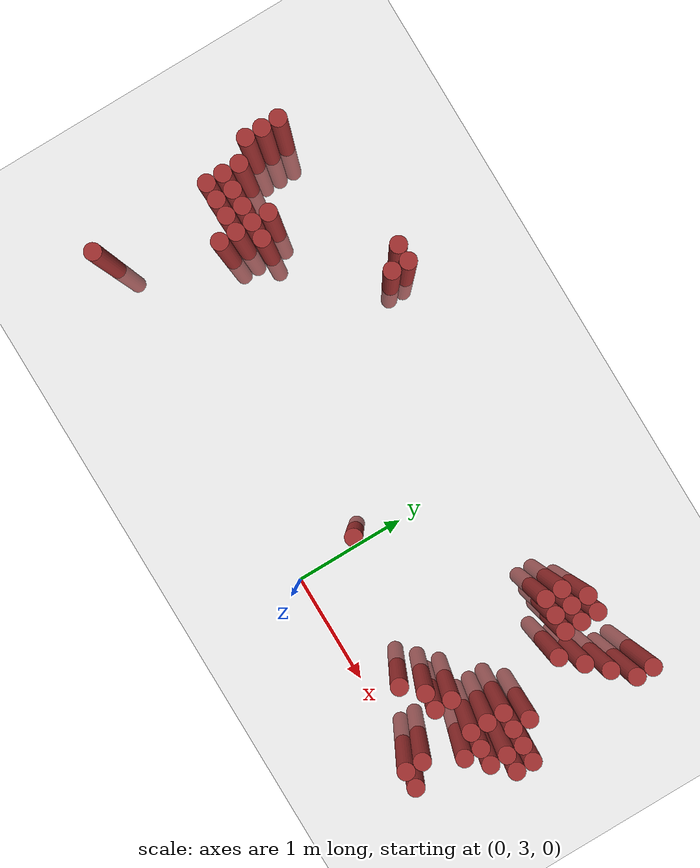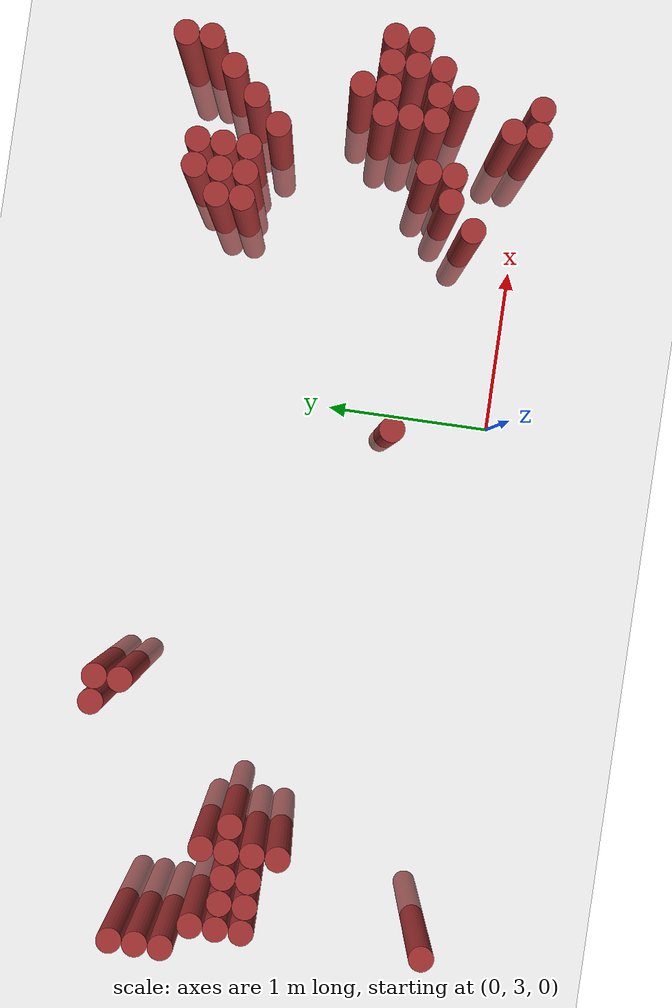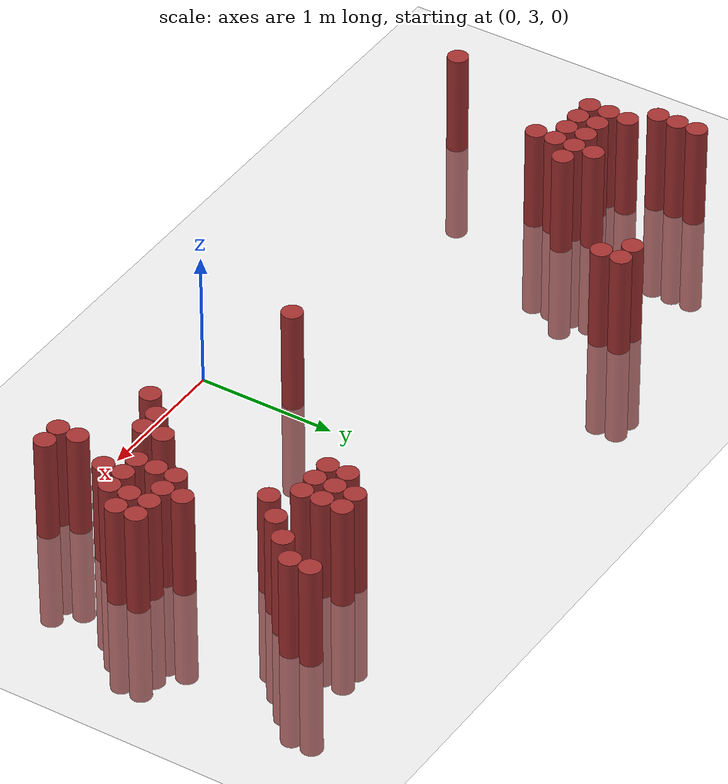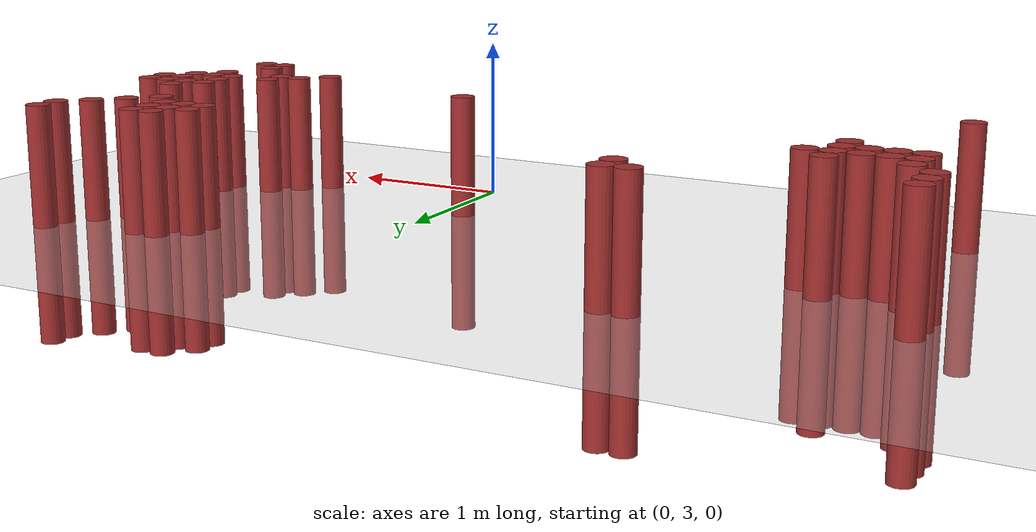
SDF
<sdf version="1.6">
 <world name="default">
  <model name="ground_plane">
   <static>1</static>
   <link name="link">
    <collision name="collision">
     <geometry><plane><normal>0 0 1</normal><size>100 100</size></plane></geometry>
     <surface><friction><ode><mu>100</mu><mu2>50</mu2></ode></friction></surface>
    </collision>
    <visual name="visual">
     <cast_shadows>0</cast_shadows>
     <geometry><plane><normal>0 0 1</normal><size>100 100</size></plane></geometry>
     <material>
      <script><uri>file://media/materials/scripts/gazebo.material</uri><name>Gazebo/Grey</name></script>
     </material>
    </visual>
   </link>
  </model>
  <model name="unit_cylinder_280">
   <static>1</static>
   <pose>-3.275000 4.525000 0.000000 0.000000 0.000000 0.000000</pose>
   <link name="link">
    <inertial>
     <mass>1</mass>
     <inertia><ixx>0.145833</ixx><ixy>0</ixy><ixz>0</ixz><iyy>0.145833</iyy><iyz>0</iyz><izz>0.125</izz></inertia>
    </inertial>
    <collision name="collision">
     <geometry><cylinder><radius>0.075000</radius><length>1.5</length></cylinder></geometry>
    </collision>
    <visual name="visual">
     <geometry><cylinder><radius>0.075000</radius><length>1.5</length></cylinder></geometry>
     <material>
      <ambient>0.648000 0.192000 0.192000 1</ambient>
      <diffuse>0.648000 0.192000 0.192000 1</diffuse>
     </material>
     <material>
      <script><name>Gazebo/Grey</name><uri>file://media/materials/scripts/gazebo.material</uri></script>
     </material>
    </visual>
   </link>
  </model>
  <model name="unit_cylinder_281">
   <static>1</static>
   <pose>-3.275000 4.675000 0.000000 0.000000 0.000000 0.000000</pose>
   <link name="link">
    <inertial>
     <mass>1</mass>
     <inertia><ixx>0.145833</ixx><ixy>0</ixy><ixz>0</ixz><iyy>0.145833</iyy><iyz>0</iyz><izz>0.125</izz></inertia>
    </inertial>
    <collision name="collision">
     <geometry><cylinder><radius>0.075000</radius><length>1.5</length></cylinder></geometry>
    </collision>
    <visual name="visual">
     <geometry><cylinder><radius>0.075000</radius><length>1.5</length></cylinder></geometry>
     <material>
      <ambient>0.648000 0.192000 0.192000 1</ambient>
      <diffuse>0.648000 0.192000 0.192000 1</diffuse>
     </material>
     <material>
      <script><name>Gazebo/Grey</name><uri>file://media/materials/scripts/gazebo.material</uri></script>
     </material>
    </visual>
   </link>
  </model>
  <model name="unit_cylinder_282">
   <static>1</static>
   <pose>-3.275000 4.825000 0.000000 0.000000 0.000000 0.000000</pose>
   <link name="link">
    <inertial>
     <mass>1</mass>
     <inertia><ixx>0.145833</ixx><ixy>0</ixy><ixz>0</ixz><iyy>0.145833</iyy><iyz>0</iyz><izz>0.125</izz></inertia>
    </inertial>
    <collision name="collision">
     <geometry><cylinder><radius>0.075000</radius><length>1.5</length></cylinder></geometry>
    </collision>
    <visual name="visual">
     <geometry><cylinder><radius>0.075000</radius><length>1.5</length></cylinder></geometry>
     <material>
      <ambient>0.648000 0.192000 0.192000 1</ambient>
      <diffuse>0.648000 0.192000 0.192000 1</diffuse>
     </material>
     <material>
      <script><name>Gazebo/Grey</name><uri>file://media/materials/scripts/gazebo.material</uri></script>
     </material>
    </visual>
   </link>
  </model>
  <model name="unit_cylinder_286">
   <static>1</static>
   <pose>-3.125000 3.025000 0.000000 0.000000 0.000000 0.000000</pose>
   <link name="link">
    <inertial>
     <mass>1</mass>
     <inertia><ixx>0.145833</ixx><ixy>0</ixy><ixz>0</ixz><iyy>0.145833</iyy><iyz>0</iyz><izz>0.125</izz></inertia>
    </inertial>
    <collision name="collision">
     <geometry><cylinder><radius>0.075000</radius><length>1.5</length></cylinder></geometry>
    </collision>
    <visual name="visual">
     <geometry><cylinder><radius>0.075000</radius><length>1.5</length></cylinder></geometry>
     <material>
      <ambient>0.648000 0.192000 0.192000 1</ambient>
      <diffuse>0.648000 0.192000 0.192000 1</diffuse>
     </material>
     <material>
      <script><name>Gazebo/Grey</name><uri>file://media/materials/scripts/gazebo.material</uri></script>
     </material>
    </visual>
   </link>
  </model>
  <model name="unit_cylinder_287">
   <static>1</static>
   <pose>-3.125000 4.075000 0.000000 0.000000 0.000000 0.000000</pose>
   <link name="link">
    <inertial>
     <mass>1</mass>
     <inertia><ixx>0.145833</ixx><ixy>0</ixy><ixz>0</ixz><iyy>0.145833</iyy><iyz>0</iyz><izz>0.125</izz></inertia>
    </inertial>
    <collision name="collision">
     <geometry><cylinder><radius>0.075000</radius><length>1.5</length></cylinder></geometry>
    </collision>
    <visual name="visual">
     <geometry><cylinder><radius>0.075000</radius><length>1.5</length></cylinder></geometry>
     <material>
      <ambient>0.648000 0.192000 0.192000 1</ambient>
      <diffuse>0.648000 0.192000 0.192000 1</diffuse>
     </material>
     <material>
      <script><name>Gazebo/Grey</name><uri>file://media/materials/scripts/gazebo.material</uri></script>
     </material>
    </visual>
   </link>
  </model>
  <model name="unit_cylinder_288">
   <static>1</static>
   <pose>-3.125000 4.225000 0.000000 0.000000 0.000000 0.000000</pose>
   <link name="link">
    <inertial>
     <mass>1</mass>
     <inertia><ixx>0.145833</ixx><ixy>0</ixy><ixz>0</ixz><iyy>0.145833</iyy><iyz>0</iyz><izz>0.125</izz></inertia>
    </inertial>
    <collision name="collision">
     <geometry><cylinder><radius>0.075000</radius><length>1.5</length></cylinder></geometry>
    </collision>
    <visual name="visual">
     <geometry><cylinder><radius>0.075000</radius><length>1.5</length></cylinder></geometry>
     <material>
      <ambient>0.648000 0.192000 0.192000 1</ambient>
      <diffuse>0.648000 0.192000 0.192000 1</diffuse>
     </material>
     <material>
      <script><name>Gazebo/Grey</name><uri>file://media/materials/scripts/gazebo.material</uri></script>
     </material>
    </visual>
   </link>
  </model>
  <model name="unit_cylinder_289">
   <static>1</static>
   <pose>-3.125000 4.375000 0.000000 0.000000 0.000000 0.000000</pose>
   <link name="link">
    <inertial>
     <mass>1</mass>
     <inertia><ixx>0.145833</ixx><ixy>0</ixy><ixz>0</ixz><iyy>0.145833</iyy><iyz>0</iyz><izz>0.125</izz></inertia>
    </inertial>
    <collision name="collision">
     <geometry><cylinder><radius>0.075000</radius><length>1.5</length></cylinder></geometry>
    </collision>
    <visual name="visual">
     <geometry><cylinder><radius>0.075000</radius><length>1.5</length></cylinder></geometry>
     <material>
      <ambient>0.648000 0.192000 0.192000 1</ambient>
      <diffuse>0.648000 0.192000 0.192000 1</diffuse>
     </material>
     <material>
      <script><name>Gazebo/Grey</name><uri>file://media/materials/scripts/gazebo.material</uri></script>
     </material>
    </visual>
   </link>
  </model>
  <model name="unit_cylinder_291">
   <static>1</static>
   <pose>-2.975000 4.075000 0.000000 0.000000 0.000000 0.000000</pose>
   <link name="link">
    <inertial>
     <mass>1</mass>
     <inertia><ixx>0.145833</ixx><ixy>0</ixy><ixz>0</ixz><iyy>0.145833</iyy><iyz>0</iyz><izz>0.125</izz></inertia>
    </inertial>
    <collision name="collision">
     <geometry><cylinder><radius>0.075000</radius><length>1.5</length></cylinder></geometry>
    </collision>
    <visual name="visual">
     <geometry><cylinder><radius>0.075000</radius><length>1.5</length></cylinder></geometry>
     <material>
      <ambient>0.648000 0.192000 0.192000 1</ambient>
      <diffuse>0.648000 0.192000 0.192000 1</diffuse>
     </material>
     <material>
      <script><name>Gazebo/Grey</name><uri>file://media/materials/scripts/gazebo.material</uri></script>
     </material>
    </visual>
   </link>
  </model>
  <model name="unit_cylinder_292">
   <static>1</static>
   <pose>-2.975000 4.225000 0.000000 0.000000 0.000000 0.000000</pose>
   <link name="link">
    <inertial>
     <mass>1</mass>
     <inertia><ixx>0.145833</ixx><ixy>0</ixy><ixz>0</ixz><iyy>0.145833</iyy><iyz>0</iyz><izz>0.125</izz></inertia>
    </inertial>
    <collision name="collision">
     <geometry><cylinder><radius>0.075000</radius><length>1.5</length></cylinder></geometry>
    </collision>
    <visual name="visual">
     <geometry><cylinder><radius>0.075000</radius><length>1.5</length></cylinder></geometry>
     <material>
      <ambient>0.648000 0.192000 0.192000 1</ambient>
      <diffuse>0.648000 0.192000 0.192000 1</diffuse>
     </material>
     <material>
      <script><name>Gazebo/Grey</name><uri>file://media/materials/scripts/gazebo.material</uri></script>
     </material>
    </visual>
   </link>
  </model>
  <model name="unit_cylinder_293">
   <static>1</static>
   <pose>-2.825000 4.075000 0.000000 0.000000 0.000000 0.000000</pose>
   <link name="link">
    <inertial>
     <mass>1</mass>
     <inertia><ixx>0.145833</ixx><ixy>0</ixy><ixz>0</ixz><iyy>0.145833</iyy><iyz>0</iyz><izz>0.125</izz></inertia>
    </inertial>
    <collision name="collision">
     <geometry><cylinder><radius>0.075000</radius><length>1.5</length></cylinder></geometry>
    </collision>
    <visual name="visual">
     <geometry><cylinder><radius>0.075000</radius><length>1.5</length></cylinder></geometry>
     <material>
      <ambient>0.648000 0.192000 0.192000 1</ambient>
      <diffuse>0.648000 0.192000 0.192000 1</diffuse>
     </material>
     <material>
      <script><name>Gazebo/Grey</name><uri>file://media/materials/scripts/gazebo.material</uri></script>
     </material>
    </visual>
   </link>
  </model>
  <model name="unit_cylinder_294">
   <static>1</static>
   <pose>-2.825000 4.225000 0.000000 0.000000 0.000000 0.000000</pose>
   <link name="link">
    <inertial>
     <mass>1</mass>
     <inertia><ixx>0.145833</ixx><ixy>0</ixy><ixz>0</ixz><iyy>0.145833</iyy><iyz>0</iyz><izz>0.125</izz></inertia>
    </inertial>
    <collision name="collision">
     <geometry><cylinder><radius>0.075000</radius><length>1.5</length></cylinder></geometry>
    </collision>
    <visual name="visual">
     <geometry><cylinder><radius>0.075000</radius><length>1.5</length></cylinder></geometry>
     <material>
      <ambient>0.648000 0.192000 0.192000 1</ambient>
      <diffuse>0.648000 0.192000 0.192000 1</diffuse>
     </material>
     <material>
      <script><name>Gazebo/Grey</name><uri>file://media/materials/scripts/gazebo.material</uri></script>
     </material>
    </visual>
   </link>
  </model>
  <model name="unit_cylinder_295">
   <static>1</static>
   <pose>-2.675000 3.925000 0.000000 0.000000 0.000000 0.000000</pose>
   <link name="link">
    <inertial>
     <mass>1</mass>
     <inertia><ixx>0.145833</ixx><ixy>0</ixy><ixz>0</ixz><iyy>0.145833</iyy><iyz>0</iyz><izz>0.125</izz></inertia>
    </inertial>
    <collision name="collision">
     <geometry><cylinder><radius>0.075000</radius><length>1.5</length></cylinder></geometry>
    </collision>
    <visual name="visual">
     <geometry><cylinder><radius>0.075000</radius><length>1.5</length></cylinder></geometry>
     <material>
      <ambient>0.648000 0.192000 0.192000 1</ambient>
      <diffuse>0.648000 0.192000 0.192000 1</diffuse>
     </material>
     <material>
      <script><name>Gazebo/Grey</name><uri>file://media/materials/scripts/gazebo.material</uri></script>
     </material>
    </visual>
   </link>
  </model>
  <model name="unit_cylinder_296">
   <static>1</static>
   <pose>-2.675000 4.075000 0.000000 0.000000 0.000000 0.000000</pose>
   <link name="link">
    <inertial>
     <mass>1</mass>
     <inertia><ixx>0.145833</ixx><ixy>0</ixy><ixz>0</ixz><iyy>0.145833</iyy><iyz>0</iyz><izz>0.125</izz></inertia>
    </inertial>
    <collision name="collision">
     <geometry><cylinder><radius>0.075000</radius><length>1.5</length></cylinder></geometry>
    </collision>
    <visual name="visual">
     <geometry><cylinder><radius>0.075000</radius><length>1.5</length></cylinder></geometry>
     <material>
      <ambient>0.648000 0.192000 0.192000 1</ambient>
      <diffuse>0.648000 0.192000 0.192000 1</diffuse>
     </material>
     <material>
      <script><name>Gazebo/Grey</name><uri>file://media/materials/scripts/gazebo.material</uri></script>
     </material>
    </visual>
   </link>
  </model>
  <model name="unit_cylinder_297">
   <static>1</static>
   <pose>-2.675000 4.225000 0.000000 0.000000 0.000000 0.000000</pose>
   <link name="link">
    <inertial>
     <mass>1</mass>
     <inertia><ixx>0.145833</ixx><ixy>0</ixy><ixz>0</ixz><iyy>0.145833</iyy><iyz>0</iyz><izz>0.125</izz></inertia>
    </inertial>
    <collision name="collision">
     <geometry><cylinder><radius>0.075000</radius><length>1.5</length></cylinder></geometry>
    </collision>
    <visual name="visual">
     <geometry><cylinder><radius>0.075000</radius><length>1.5</length></cylinder></geometry>
     <material>
      <ambient>0.648000 0.192000 0.192000 1</ambient>
      <diffuse>0.648000 0.192000 0.192000 1</diffuse>
     </material>
     <material>
      <script><name>Gazebo/Grey</name><uri>file://media/materials/scripts/gazebo.material</uri></script>
     </material>
    </visual>
   </link>
  </model>
  <model name="unit_cylinder_298">
   <static>1</static>
   <pose>-2.675000 4.375000 0.000000 0.000000 0.000000 0.000000</pose>
   <link name="link">
    <inertial>
     <mass>1</mass>
     <inertia><ixx>0.145833</ixx><ixy>0</ixy><ixz>0</ixz><iyy>0.145833</iyy><iyz>0</iyz><izz>0.125</izz></inertia>
    </inertial>
    <collision name="collision">
     <geometry><cylinder><radius>0.075000</radius><length>1.5</length></cylinder></geometry>
    </collision>
    <visual name="visual">
     <geometry><cylinder><radius>0.075000</radius><length>1.5</length></cylinder></geometry>
     <material>
      <ambient>0.648000 0.192000 0.192000 1</ambient>
      <diffuse>0.648000 0.192000 0.192000 1</diffuse>
     </material>
     <material>
      <script><name>Gazebo/Grey</name><uri>file://media/materials/scripts/gazebo.material</uri></script>
     </material>
    </visual>
   </link>
  </model>
  <model name="unit_cylinder_299">
   <static>1</static>
   <pose>-2.525000 4.225000 0.000000 0.000000 0.000000 0.000000</pose>
   <link name="link">
    <inertial>
     <mass>1</mass>
     <inertia><ixx>0.145833</ixx><ixy>0</ixy><ixz>0</ixz><iyy>0.145833</iyy><iyz>0</iyz><izz>0.125</izz></inertia>
    </inertial>
    <collision name="collision">
     <geometry><cylinder><radius>0.075000</radius><length>1.5</length></cylinder></geometry>
    </collision>
    <visual name="visual">
     <geometry><cylinder><radius>0.075000</radius><length>1.5</length></cylinder></geometry>
     <material>
      <ambient>0.648000 0.192000 0.192000 1</ambient>
      <diffuse>0.648000 0.192000 0.192000 1</diffuse>
     </material>
     <material>
      <script><name>Gazebo/Grey</name><uri>file://media/materials/scripts/gazebo.material</uri></script>
     </material>
    </visual>
   </link>
  </model>
  <model name="unit_cylinder_319">
   <static>1</static>
   <pose>-1.925000 5.125000 0.000000 0.000000 0.000000 0.000000</pose>
   <link name="link">
    <inertial>
     <mass>1</mass>
     <inertia><ixx>0.145833</ixx><ixy>0</ixy><ixz>0</ixz><iyy>0.145833</iyy><iyz>0</iyz><izz>0.125</izz></inertia>
    </inertial>
    <collision name="collision">
     <geometry><cylinder><radius>0.075000</radius><length>1.5</length></cylinder></geometry>
    </collision>
    <visual name="visual">
     <geometry><cylinder><radius>0.075000</radius><length>1.5</length></cylinder></geometry>
     <material>
      <ambient>0.648000 0.192000 0.192000 1</ambient>
      <diffuse>0.648000 0.192000 0.192000 1</diffuse>
     </material>
     <material>
      <script><name>Gazebo/Grey</name><uri>file://media/materials/scripts/gazebo.material</uri></script>
     </material>
    </visual>
   </link>
  </model>
  <model name="unit_cylinder_325">
   <static>1</static>
   <pose>-1.775000 4.975000 0.000000 0.000000 0.000000 0.000000</pose>
   <link name="link">
    <inertial>
     <mass>1</mass>
     <inertia><ixx>0.145833</ixx><ixy>0</ixy><ixz>0</ixz><iyy>0.145833</iyy><iyz>0</iyz><izz>0.125</izz></inertia>
    </inertial>
    <collision name="collision">
     <geometry><cylinder><radius>0.075000</radius><length>1.5</length></cylinder></geometry>
    </collision>
    <visual name="visual">
     <geometry><cylinder><radius>0.075000</radius><length>1.5</length></cylinder></geometry>
     <material>
      <ambient>0.648000 0.192000 0.192000 1</ambient>
      <diffuse>0.648000 0.192000 0.192000 1</diffuse>
     </material>
     <material>
      <script><name>Gazebo/Grey</name><uri>file://media/materials/scripts/gazebo.material</uri></script>
     </material>
    </visual>
   </link>
  </model>
  <model name="unit_cylinder_326">
   <static>1</static>
   <pose>-1.775000 5.125000 0.000000 0.000000 0.000000 0.000000</pose>
   <link name="link">
    <inertial>
     <mass>1</mass>
     <inertia><ixx>0.145833</ixx><ixy>0</ixy><ixz>0</ixz><iyy>0.145833</iyy><iyz>0</iyz><izz>0.125</izz></inertia>
    </inertial>
    <collision name="collision">
     <geometry><cylinder><radius>0.075000</radius><length>1.5</length></cylinder></geometry>
    </collision>
    <visual name="visual">
     <geometry><cylinder><radius>0.075000</radius><length>1.5</length></cylinder></geometry>
     <material>
      <ambient>0.648000 0.192000 0.192000 1</ambient>
      <diffuse>0.648000 0.192000 0.192000 1</diffuse>
     </material>
     <material>
      <script><name>Gazebo/Grey</name><uri>file://media/materials/scripts/gazebo.material</uri></script>
     </material>
    </visual>
   </link>
  </model>
  <model name="unit_cylinder_354">
   <static>1</static>
   <pose>-0.125000 3.625000 0.000000 0.000000 0.000000 0.000000</pose>
   <link name="link">
    <inertial>
     <mass>1</mass>
     <inertia><ixx>0.145833</ixx><ixy>0</ixy><ixz>0</ixz><iyy>0.145833</iyy><iyz>0</iyz><izz>0.125</izz></inertia>
    </inertial>
    <collision name="collision">
     <geometry><cylinder><radius>0.075000</radius><length>1.5</length></cylinder></geometry>
    </collision>
    <visual name="visual">
     <geometry><cylinder><radius>0.075000</radius><length>1.5</length></cylinder></geometry>
     <material>
      <ambient>0.648000 0.192000 0.192000 1</ambient>
      <diffuse>0.648000 0.192000 0.192000 1</diffuse>
     </material>
     <material>
      <script><name>Gazebo/Grey</name><uri>file://media/materials/scripts/gazebo.material</uri></script>
     </material>
    </visual>
   </link>
  </model>
  <model name="unit_cylinder_366">
   <static>1</static>
   <pose>1.075000 3.325000 0.000000 0.000000 0.000000 0.000000</pose>
   <link name="link">
    <inertial>
     <mass>1</mass>
     <inertia><ixx>0.145833</ixx><ixy>0</ixy><ixz>0</ixz><iyy>0.145833</iyy><iyz>0</iyz><izz>0.125</izz></inertia>
    </inertial>
    <collision name="collision">
     <geometry><cylinder><radius>0.075000</radius><length>1.5</length></cylinder></geometry>
    </collision>
    <visual name="visual">
     <geometry><cylinder><radius>0.075000</radius><length>1.5</length></cylinder></geometry>
     <material>
      <ambient>0.648000 0.192000 0.192000 1</ambient>
      <diffuse>0.648000 0.192000 0.192000 1</diffuse>
     </material>
     <material>
      <script><name>Gazebo/Grey</name><uri>file://media/materials/scripts/gazebo.material</uri></script>
     </material>
    </visual>
   </link>
  </model>
  <model name="unit_cylinder_367">
   <static>1</static>
   <pose>1.075000 4.675000 0.000000 0.000000 0.000000 0.000000</pose>
   <link name="link">
    <inertial>
     <mass>1</mass>
     <inertia><ixx>0.145833</ixx><ixy>0</ixy><ixz>0</ixz><iyy>0.145833</iyy><iyz>0</iyz><izz>0.125</izz></inertia>
    </inertial>
    <collision name="collision">
     <geometry><cylinder><radius>0.075000</radius><length>1.5</length></cylinder></geometry>
    </collision>
    <visual name="visual">
     <geometry><cylinder><radius>0.075000</radius><length>1.5</length></cylinder></geometry>
     <material>
      <ambient>0.648000 0.192000 0.192000 1</ambient>
      <diffuse>0.648000 0.192000 0.192000 1</diffuse>
     </material>
     <material>
      <script><name>Gazebo/Grey</name><uri>file://media/materials/scripts/gazebo.material</uri></script>
     </material>
    </visual>
   </link>
  </model>
  <model name="unit_cylinder_368">
   <static>1</static>
   <pose>1.075000 4.825000 0.000000 0.000000 0.000000 0.000000</pose>
   <link name="link">
    <inertial>
     <mass>1</mass>
     <inertia><ixx>0.145833</ixx><ixy>0</ixy><ixz>0</ixz><iyy>0.145833</iyy><iyz>0</iyz><izz>0.125</izz></inertia>
    </inertial>
    <collision name="collision">
     <geometry><cylinder><radius>0.075000</radius><length>1.5</length></cylinder></geometry>
    </collision>
    <visual name="visual">
     <geometry><cylinder><radius>0.075000</radius><length>1.5</length></cylinder></geometry>
     <material>
      <ambient>0.648000 0.192000 0.192000 1</ambient>
      <diffuse>0.648000 0.192000 0.192000 1</diffuse>
     </material>
     <material>
      <script><name>Gazebo/Grey</name><uri>file://media/materials/scripts/gazebo.material</uri></script>
     </material>
    </visual>
   </link>
  </model>
  <model name="unit_cylinder_375">
   <static>1</static>
   <pose>1.225000 3.475000 0.000000 0.000000 0.000000 0.000000</pose>
   <link name="link">
    <inertial>
     <mass>1</mass>
     <inertia><ixx>0.145833</ixx><ixy>0</ixy><ixz>0</ixz><iyy>0.145833</iyy><iyz>0</iyz><izz>0.125</izz></inertia>
    </inertial>
    <collision name="collision">
     <geometry><cylinder><radius>0.075000</radius><length>1.5</length></cylinder></geometry>
    </collision>
    <visual name="visual">
     <geometry><cylinder><radius>0.075000</radius><length>1.5</length></cylinder></geometry>
     <material>
      <ambient>0.648000 0.192000 0.192000 1</ambient>
      <diffuse>0.648000 0.192000 0.192000 1</diffuse>
     </material>
     <material>
      <script><name>Gazebo/Grey</name><uri>file://media/materials/scripts/gazebo.material</uri></script>
     </material>
    </visual>
   </link>
  </model>
  <model name="unit_cylinder_376">
   <static>1</static>
   <pose>1.225000 4.675000 0.000000 0.000000 0.000000 0.000000</pose>
   <link name="link">
    <inertial>
     <mass>1</mass>
     <inertia><ixx>0.145833</ixx><ixy>0</ixy><ixz>0</ixz><iyy>0.145833</iyy><iyz>0</iyz><izz>0.125</izz></inertia>
    </inertial>
    <collision name="collision">
     <geometry><cylinder><radius>0.075000</radius><length>1.5</length></cylinder></geometry>
    </collision>
    <visual name="visual">
     <geometry><cylinder><radius>0.075000</radius><length>1.5</length></cylinder></geometry>
     <material>
      <ambient>0.648000 0.192000 0.192000 1</ambient>
      <diffuse>0.648000 0.192000 0.192000 1</diffuse>
     </material>
     <material>
      <script><name>Gazebo/Grey</name><uri>file://media/materials/scripts/gazebo.material</uri></script>
     </material>
    </visual>
   </link>
  </model>
  <model name="unit_cylinder_377">
   <static>1</static>
   <pose>1.225000 4.825000 0.000000 0.000000 0.000000 0.000000</pose>
   <link name="link">
    <inertial>
     <mass>1</mass>
     <inertia><ixx>0.145833</ixx><ixy>0</ixy><ixz>0</ixz><iyy>0.145833</iyy><iyz>0</iyz><izz>0.125</izz></inertia>
    </inertial>
    <collision name="collision">
     <geometry><cylinder><radius>0.075000</radius><length>1.5</length></cylinder></geometry>
    </collision>
    <visual name="visual">
     <geometry><cylinder><radius>0.075000</radius><length>1.5</length></cylinder></geometry>
     <material>
      <ambient>0.648000 0.192000 0.192000 1</ambient>
      <diffuse>0.648000 0.192000 0.192000 1</diffuse>
     </material>
     <material>
      <script><name>Gazebo/Grey</name><uri>file://media/materials/scripts/gazebo.material</uri></script>
     </material>
    </visual>
   </link>
  </model>
  <model name="unit_cylinder_378">
   <static>1</static>
   <pose>1.225000 4.975000 0.000000 0.000000 0.000000 0.000000</pose>
   <link name="link">
    <inertial>
     <mass>1</mass>
     <inertia><ixx>0.145833</ixx><ixy>0</ixy><ixz>0</ixz><iyy>0.145833</iyy><iyz>0</iyz><izz>0.125</izz></inertia>
    </inertial>
    <collision name="collision">
     <geometry><cylinder><radius>0.075000</radius><length>1.5</length></cylinder></geometry>
    </collision>
    <visual name="visual">
     <geometry><cylinder><radius>0.075000</radius><length>1.5</length></cylinder></geometry>
     <material>
      <ambient>0.648000 0.192000 0.192000 1</ambient>
      <diffuse>0.648000 0.192000 0.192000 1</diffuse>
     </material>
     <material>
      <script><name>Gazebo/Grey</name><uri>file://media/materials/scripts/gazebo.material</uri></script>
     </material>
    </visual>
   </link>
  </model>
  <model name="unit_cylinder_381">
   <static>1</static>
   <pose>1.375000 3.475000 0.000000 0.000000 0.000000 0.000000</pose>
   <link name="link">
    <inertial>
     <mass>1</mass>
     <inertia><ixx>0.145833</ixx><ixy>0</ixy><ixz>0</ixz><iyy>0.145833</iyy><iyz>0</iyz><izz>0.125</izz></inertia>
    </inertial>
    <collision name="collision">
     <geometry><cylinder><radius>0.075000</radius><length>1.5</length></cylinder></geometry>
    </collision>
    <visual name="visual">
     <geometry><cylinder><radius>0.075000</radius><length>1.5</length></cylinder></geometry>
     <material>
      <ambient>0.648000 0.192000 0.192000 1</ambient>
      <diffuse>0.648000 0.192000 0.192000 1</diffuse>
     </material>
     <material>
      <script><name>Gazebo/Grey</name><uri>file://media/materials/scripts/gazebo.material</uri></script>
     </material>
    </visual>
   </link>
  </model>
  <model name="unit_cylinder_382">
   <static>1</static>
   <pose>1.375000 3.625000 0.000000 0.000000 0.000000 0.000000</pose>
   <link name="link">
    <inertial>
     <mass>1</mass>
     <inertia><ixx>0.145833</ixx><ixy>0</ixy><ixz>0</ixz><iyy>0.145833</iyy><iyz>0</iyz><izz>0.125</izz></inertia>
    </inertial>
    <collision name="collision">
     <geometry><cylinder><radius>0.075000</radius><length>1.5</length></cylinder></geometry>
    </collision>
    <visual name="visual">
     <geometry><cylinder><radius>0.075000</radius><length>1.5</length></cylinder></geometry>
     <material>
      <ambient>0.648000 0.192000 0.192000 1</ambient>
      <diffuse>0.648000 0.192000 0.192000 1</diffuse>
     </material>
     <material>
      <script><name>Gazebo/Grey</name><uri>file://media/materials/scripts/gazebo.material</uri></script>
     </material>
    </visual>
   </link>
  </model>
  <model name="unit_cylinder_383">
   <static>1</static>
   <pose>1.375000 4.675000 0.000000 0.000000 0.000000 0.000000</pose>
   <link name="link">
    <inertial>
     <mass>1</mass>
     <inertia><ixx>0.145833</ixx><ixy>0</ixy><ixz>0</ixz><iyy>0.145833</iyy><iyz>0</iyz><izz>0.125</izz></inertia>
    </inertial>
    <collision name="collision">
     <geometry><cylinder><radius>0.075000</radius><length>1.5</length></cylinder></geometry>
    </collision>
    <visual name="visual">
     <geometry><cylinder><radius>0.075000</radius><length>1.5</length></cylinder></geometry>
     <material>
      <ambient>0.648000 0.192000 0.192000 1</ambient>
      <diffuse>0.648000 0.192000 0.192000 1</diffuse>
     </material>
     <material>
      <script><name>Gazebo/Grey</name><uri>file://media/materials/scripts/gazebo.material</uri></script>
     </material>
    </visual>
   </link>
  </model>
  <model name="unit_cylinder_384">
   <static>1</static>
   <pose>1.375000 4.825000 0.000000 0.000000 0.000000 0.000000</pose>
   <link name="link">
    <inertial>
     <mass>1</mass>
     <inertia><ixx>0.145833</ixx><ixy>0</ixy><ixz>0</ixz><iyy>0.145833</iyy><iyz>0</iyz><izz>0.125</izz></inertia>
    </inertial>
    <collision name="collision">
     <geometry><cylinder><radius>0.075000</radius><length>1.5</length></cylinder></geometry>
    </collision>
    <visual name="visual">
     <geometry><cylinder><radius>0.075000</radius><length>1.5</length></cylinder></geometry>
     <material>
      <ambient>0.648000 0.192000 0.192000 1</ambient>
      <diffuse>0.648000 0.192000 0.192000 1</diffuse>
     </material>
     <material>
      <script><name>Gazebo/Grey</name><uri>file://media/materials/scripts/gazebo.material</uri></script>
     </material>
    </visual>
   </link>
  </model>
  <model name="unit_cylinder_385">
   <static>1</static>
   <pose>1.375000 4.975000 0.000000 0.000000 0.000000 0.000000</pose>
   <link name="link">
    <inertial>
     <mass>1</mass>
     <inertia><ixx>0.145833</ixx><ixy>0</ixy><ixz>0</ixz><iyy>0.145833</iyy><iyz>0</iyz><izz>0.125</izz></inertia>
    </inertial>
    <collision name="collision">
     <geometry><cylinder><radius>0.075000</radius><length>1.5</length></cylinder></geometry>
    </collision>
    <visual name="visual">
     <geometry><cylinder><radius>0.075000</radius><length>1.5</length></cylinder></geometry>
     <material>
      <ambient>0.648000 0.192000 0.192000 1</ambient>
      <diffuse>0.648000 0.192000 0.192000 1</diffuse>
     </material>
     <material>
      <script><name>Gazebo/Grey</name><uri>file://media/materials/scripts/gazebo.material</uri></script>
     </material>
    </visual>
   </link>
  </model>
  <model name="unit_cylinder_386">
   <static>1</static>
   <pose>1.525000 4.525000 0.000000 0.000000 0.000000 0.000000</pose>
   <link name="link">
    <inertial>
     <mass>1</mass>
     <inertia><ixx>0.145833</ixx><ixy>0</ixy><ixz>0</ixz><iyy>0.145833</iyy><iyz>0</iyz><izz>0.125</izz></inertia>
    </inertial>
    <collision name="collision">
     <geometry><cylinder><radius>0.075000</radius><length>1.5</length></cylinder></geometry>
    </collision>
    <visual name="visual">
     <geometry><cylinder><radius>0.075000</radius><length>1.5</length></cylinder></geometry>
     <material>
      <ambient>0.648000 0.192000 0.192000 1</ambient>
      <diffuse>0.648000 0.192000 0.192000 1</diffuse>
     </material>
     <material>
      <script><name>Gazebo/Grey</name><uri>file://media/materials/scripts/gazebo.material</uri></script>
     </material>
    </visual>
   </link>
  </model>
  <model name="unit_cylinder_391">
   <static>1</static>
   <pose>1.675000 3.025000 0.000000 0.000000 0.000000 0.000000</pose>
   <link name="link">
    <inertial>
     <mass>1</mass>
     <inertia><ixx>0.145833</ixx><ixy>0</ixy><ixz>0</ixz><iyy>0.145833</iyy><iyz>0</iyz><izz>0.125</izz></inertia>
    </inertial>
    <collision name="collision">
     <geometry><cylinder><radius>0.075000</radius><length>1.5</length></cylinder></geometry>
    </collision>
    <visual name="visual">
     <geometry><cylinder><radius>0.075000</radius><length>1.5</length></cylinder></geometry>
     <material>
      <ambient>0.648000 0.192000 0.192000 1</ambient>
      <diffuse>0.648000 0.192000 0.192000 1</diffuse>
     </material>
     <material>
      <script><name>Gazebo/Grey</name><uri>file://media/materials/scripts/gazebo.material</uri></script>
     </material>
    </visual>
   </link>
  </model>
  <model name="unit_cylinder_392">
   <static>1</static>
   <pose>1.675000 3.175000 0.000000 0.000000 0.000000 0.000000</pose>
   <link name="link">
    <inertial>
     <mass>1</mass>
     <inertia><ixx>0.145833</ixx><ixy>0</ixy><ixz>0</ixz><iyy>0.145833</iyy><iyz>0</iyz><izz>0.125</izz></inertia>
    </inertial>
    <collision name="collision">
     <geometry><cylinder><radius>0.075000</radius><length>1.5</length></cylinder></geometry>
    </collision>
    <visual name="visual">
     <geometry><cylinder><radius>0.075000</radius><length>1.5</length></cylinder></geometry>
     <material>
      <ambient>0.648000 0.192000 0.192000 1</ambient>
      <diffuse>0.648000 0.192000 0.192000 1</diffuse>
     </material>
     <material>
      <script><name>Gazebo/Grey</name><uri>file://media/materials/scripts/gazebo.material</uri></script>
     </material>
    </visual>
   </link>
  </model>
  <model name="unit_cylinder_393">
   <static>1</static>
   <pose>1.675000 3.625000 0.000000 0.000000 0.000000 0.000000</pose>
   <link name="link">
    <inertial>
     <mass>1</mass>
     <inertia><ixx>0.145833</ixx><ixy>0</ixy><ixz>0</ixz><iyy>0.145833</iyy><iyz>0</iyz><izz>0.125</izz></inertia>
    </inertial>
    <collision name="collision">
     <geometry><cylinder><radius>0.075000</radius><length>1.5</length></cylinder></geometry>
    </collision>
    <visual name="visual">
     <geometry><cylinder><radius>0.075000</radius><length>1.5</length></cylinder></geometry>
     <material>
      <ambient>0.648000 0.192000 0.192000 1</ambient>
      <diffuse>0.648000 0.192000 0.192000 1</diffuse>
     </material>
     <material>
      <script><name>Gazebo/Grey</name><uri>file://media/materials/scripts/gazebo.material</uri></script>
     </material>
    </visual>
   </link>
  </model>
  <model name="unit_cylinder_394">
   <static>1</static>
   <pose>1.675000 3.775000 0.000000 0.000000 0.000000 0.000000</pose>
   <link name="link">
    <inertial>
     <mass>1</mass>
     <inertia><ixx>0.145833</ixx><ixy>0</ixy><ixz>0</ixz><iyy>0.145833</iyy><iyz>0</iyz><izz>0.125</izz></inertia>
    </inertial>
    <collision name="collision">
     <geometry><cylinder><radius>0.075000</radius><length>1.5</length></cylinder></geometry>
    </collision>
    <visual name="visual">
     <geometry><cylinder><radius>0.075000</radius><length>1.5</length></cylinder></geometry>
     <material>
      <ambient>0.648000 0.192000 0.192000 1</ambient>
      <diffuse>0.648000 0.192000 0.192000 1</diffuse>
     </material>
     <material>
      <script><name>Gazebo/Grey</name><uri>file://media/materials/scripts/gazebo.material</uri></script>
     </material>
    </visual>
   </link>
  </model>
  <model name="unit_cylinder_395">
   <static>1</static>
   <pose>1.675000 3.925000 0.000000 0.000000 0.000000 0.000000</pose>
   <link name="link">
    <inertial>
     <mass>1</mass>
     <inertia><ixx>0.145833</ixx><ixy>0</ixy><ixz>0</ixz><iyy>0.145833</iyy><iyz>0</iyz><izz>0.125</izz></inertia>
    </inertial>
    <collision name="collision">
     <geometry><cylinder><radius>0.075000</radius><length>1.5</length></cylinder></geometry>
    </collision>
    <visual name="visual">
     <geometry><cylinder><radius>0.075000</radius><length>1.5</length></cylinder></geometry>
     <material>
      <ambient>0.648000 0.192000 0.192000 1</ambient>
      <diffuse>0.648000 0.192000 0.192000 1</diffuse>
     </material>
     <material>
      <script><name>Gazebo/Grey</name><uri>file://media/materials/scripts/gazebo.material</uri></script>
     </material>
    </visual>
   </link>
  </model>
  <model name="unit_cylinder_396">
   <static>1</static>
   <pose>1.675000 4.675000 0.000000 0.000000 0.000000 0.000000</pose>
   <link name="link">
    <inertial>
     <mass>1</mass>
     <inertia><ixx>0.145833</ixx><ixy>0</ixy><ixz>0</ixz><iyy>0.145833</iyy><iyz>0</iyz><izz>0.125</izz></inertia>
    </inertial>
    <collision name="collision">
     <geometry><cylinder><radius>0.075000</radius><length>1.5</length></cylinder></geometry>
    </collision>
    <visual name="visual">
     <geometry><cylinder><radius>0.075000</radius><length>1.5</length></cylinder></geometry>
     <material>
      <ambient>0.648000 0.192000 0.192000 1</ambient>
      <diffuse>0.648000 0.192000 0.192000 1</diffuse>
     </material>
     <material>
      <script><name>Gazebo/Grey</name><uri>file://media/materials/scripts/gazebo.material</uri></script>
     </material>
    </visual>
   </link>
  </model>
  <model name="unit_cylinder_400">
   <static>1</static>
   <pose>1.825000 3.025000 0.000000 0.000000 0.000000 0.000000</pose>
   <link name="link">
    <inertial>
     <mass>1</mass>
     <inertia><ixx>0.145833</ixx><ixy>0</ixy><ixz>0</ixz><iyy>0.145833</iyy><iyz>0</iyz><izz>0.125</izz></inertia>
    </inertial>
    <collision name="collision">
     <geometry><cylinder><radius>0.075000</radius><length>1.5</length></cylinder></geometry>
    </collision>
    <visual name="visual">
     <geometry><cylinder><radius>0.075000</radius><length>1.5</length></cylinder></geometry>
     <material>
      <ambient>0.648000 0.192000 0.192000 1</ambient>
      <diffuse>0.648000 0.192000 0.192000 1</diffuse>
     </material>
     <material>
      <script><name>Gazebo/Grey</name><uri>file://media/materials/scripts/gazebo.material</uri></script>
     </material>
    </visual>
   </link>
  </model>
  <model name="unit_cylinder_401">
   <static>1</static>
   <pose>1.825000 3.475000 0.000000 0.000000 0.000000 0.000000</pose>
   <link name="link">
    <inertial>
     <mass>1</mass>
     <inertia><ixx>0.145833</ixx><ixy>0</ixy><ixz>0</ixz><iyy>0.145833</iyy><iyz>0</iyz><izz>0.125</izz></inertia>
    </inertial>
    <collision name="collision">
     <geometry><cylinder><radius>0.075000</radius><length>1.5</length></cylinder></geometry>
    </collision>
    <visual name="visual">
     <geometry><cylinder><radius>0.075000</radius><length>1.5</length></cylinder></geometry>
     <material>
      <ambient>0.648000 0.192000 0.192000 1</ambient>
      <diffuse>0.648000 0.192000 0.192000 1</diffuse>
     </material>
     <material>
      <script><name>Gazebo/Grey</name><uri>file://media/materials/scripts/gazebo.material</uri></script>
     </material>
    </visual>
   </link>
  </model>
  <model name="unit_cylinder_402">
   <static>1</static>
   <pose>1.825000 3.625000 0.000000 0.000000 0.000000 0.000000</pose>
   <link name="link">
    <inertial>
     <mass>1</mass>
     <inertia><ixx>0.145833</ixx><ixy>0</ixy><ixz>0</ixz><iyy>0.145833</iyy><iyz>0</iyz><izz>0.125</izz></inertia>
    </inertial>
    <collision name="collision">
     <geometry><cylinder><radius>0.075000</radius><length>1.5</length></cylinder></geometry>
    </collision>
    <visual name="visual">
     <geometry><cylinder><radius>0.075000</radius><length>1.5</length></cylinder></geometry>
     <material>
      <ambient>0.648000 0.192000 0.192000 1</ambient>
      <diffuse>0.648000 0.192000 0.192000 1</diffuse>
     </material>
     <material>
      <script><name>Gazebo/Grey</name><uri>file://media/materials/scripts/gazebo.material</uri></script>
     </material>
    </visual>
   </link>
  </model>
  <model name="unit_cylinder_403">
   <static>1</static>
   <pose>1.825000 3.925000 0.000000 0.000000 0.000000 0.000000</pose>
   <link name="link">
    <inertial>
     <mass>1</mass>
     <inertia><ixx>0.145833</ixx><ixy>0</ixy><ixz>0</ixz><iyy>0.145833</iyy><iyz>0</iyz><izz>0.125</izz></inertia>
    </inertial>
    <collision name="collision">
     <geometry><cylinder><radius>0.075000</radius><length>1.5</length></cylinder></geometry>
    </collision>
    <visual name="visual">
     <geometry><cylinder><radius>0.075000</radius><length>1.5</length></cylinder></geometry>
     <material>
      <ambient>0.648000 0.192000 0.192000 1</ambient>
      <diffuse>0.648000 0.192000 0.192000 1</diffuse>
     </material>
     <material>
      <script><name>Gazebo/Grey</name><uri>file://media/materials/scripts/gazebo.material</uri></script>
     </material>
    </visual>
   </link>
  </model>
  <model name="unit_cylinder_404">
   <static>1</static>
   <pose>1.825000 4.075000 0.000000 0.000000 0.000000 0.000000</pose>
   <link name="link">
    <inertial>
     <mass>1</mass>
     <inertia><ixx>0.145833</ixx><ixy>0</ixy><ixz>0</ixz><iyy>0.145833</iyy><iyz>0</iyz><izz>0.125</izz></inertia>
    </inertial>
    <collision name="collision">
     <geometry><cylinder><radius>0.075000</radius><length>1.5</length></cylinder></geometry>
    </collision>
    <visual name="visual">
     <geometry><cylinder><radius>0.075000</radius><length>1.5</length></cylinder></geometry>
     <material>
      <ambient>0.648000 0.192000 0.192000 1</ambient>
      <diffuse>0.648000 0.192000 0.192000 1</diffuse>
     </material>
     <material>
      <script><name>Gazebo/Grey</name><uri>file://media/materials/scripts/gazebo.material</uri></script>
     </material>
    </visual>
   </link>
  </model>
  <model name="unit_cylinder_405">
   <static>1</static>
   <pose>1.825000 4.825000 0.000000 0.000000 0.000000 0.000000</pose>
   <link name="link">
    <inertial>
     <mass>1</mass>
     <inertia><ixx>0.145833</ixx><ixy>0</ixy><ixz>0</ixz><iyy>0.145833</iyy><iyz>0</iyz><izz>0.125</izz></inertia>
    </inertial>
    <collision name="collision">
     <geometry><cylinder><radius>0.075000</radius><length>1.5</length></cylinder></geometry>
    </collision>
    <visual name="visual">
     <geometry><cylinder><radius>0.075000</radius><length>1.5</length></cylinder></geometry>
     <material>
      <ambient>0.648000 0.192000 0.192000 1</ambient>
      <diffuse>0.648000 0.192000 0.192000 1</diffuse>
     </material>
     <material>
      <script><name>Gazebo/Grey</name><uri>file://media/materials/scripts/gazebo.material</uri></script>
     </material>
    </visual>
   </link>
  </model>
  <model name="unit_cylinder_409">
   <static>1</static>
   <pose>1.975000 3.625000 0.000000 0.000000 0.000000 0.000000</pose>
   <link name="link">
    <inertial>
     <mass>1</mass>
     <inertia><ixx>0.145833</ixx><ixy>0</ixy><ixz>0</ixz><iyy>0.145833</iyy><iyz>0</iyz><izz>0.125</izz></inertia>
    </inertial>
    <collision name="collision">
     <geometry><cylinder><radius>0.075000</radius><length>1.5</length></cylinder></geometry>
    </collision>
    <visual name="visual">
     <geometry><cylinder><radius>0.075000</radius><length>1.5</length></cylinder></geometry>
     <material>
      <ambient>0.648000 0.192000 0.192000 1</ambient>
      <diffuse>0.648000 0.192000 0.192000 1</diffuse>
     </material>
     <material>
      <script><name>Gazebo/Grey</name><uri>file://media/materials/scripts/gazebo.material</uri></script>
     </material>
    </visual>
   </link>
  </model>
  <model name="unit_cylinder_410">
   <static>1</static>
   <pose>1.975000 3.775000 0.000000 0.000000 0.000000 0.000000</pose>
   <link name="link">
    <inertial>
     <mass>1</mass>
     <inertia><ixx>0.145833</ixx><ixy>0</ixy><ixz>0</ixz><iyy>0.145833</iyy><iyz>0</iyz><izz>0.125</izz></inertia>
    </inertial>
    <collision name="collision">
     <geometry><cylinder><radius>0.075000</radius><length>1.5</length></cylinder></geometry>
    </collision>
    <visual name="visual">
     <geometry><cylinder><radius>0.075000</radius><length>1.5</length></cylinder></geometry>
     <material>
      <ambient>0.648000 0.192000 0.192000 1</ambient>
      <diffuse>0.648000 0.192000 0.192000 1</diffuse>
     </material>
     <material>
      <script><name>Gazebo/Grey</name><uri>file://media/materials/scripts/gazebo.material</uri></script>
     </material>
    </visual>
   </link>
  </model>
  <model name="unit_cylinder_411">
   <static>1</static>
   <pose>1.975000 3.925000 0.000000 0.000000 0.000000 0.000000</pose>
   <link name="link">
    <inertial>
     <mass>1</mass>
     <inertia><ixx>0.145833</ixx><ixy>0</ixy><ixz>0</ixz><iyy>0.145833</iyy><iyz>0</iyz><izz>0.125</izz></inertia>
    </inertial>
    <collision name="collision">
     <geometry><cylinder><radius>0.075000</radius><length>1.5</length></cylinder></geometry>
    </collision>
    <visual name="visual">
     <geometry><cylinder><radius>0.075000</radius><length>1.5</length></cylinder></geometry>
     <material>
      <ambient>0.648000 0.192000 0.192000 1</ambient>
      <diffuse>0.648000 0.192000 0.192000 1</diffuse>
     </material>
     <material>
      <script><name>Gazebo/Grey</name><uri>file://media/materials/scripts/gazebo.material</uri></script>
     </material>
    </visual>
   </link>
  </model>
  <model name="unit_cylinder_412">
   <static>1</static>
   <pose>1.975000 4.975000 0.000000 0.000000 0.000000 0.000000</pose>
   <link name="link">
    <inertial>
     <mass>1</mass>
     <inertia><ixx>0.145833</ixx><ixy>0</ixy><ixz>0</ixz><iyy>0.145833</iyy><iyz>0</iyz><izz>0.125</izz></inertia>
    </inertial>
    <collision name="collision">
     <geometry><cylinder><radius>0.075000</radius><length>1.5</length></cylinder></geometry>
    </collision>
    <visual name="visual">
     <geometry><cylinder><radius>0.075000</radius><length>1.5</length></cylinder></geometry>
     <material>
      <ambient>0.648000 0.192000 0.192000 1</ambient>
      <diffuse>0.648000 0.192000 0.192000 1</diffuse>
     </material>
     <material>
      <script><name>Gazebo/Grey</name><uri>file://media/materials/scripts/gazebo.material</uri></script>
     </material>
    </visual>
   </link>
  </model>
  <model name="unit_cylinder_413">
   <static>1</static>
   <pose>1.975000 5.125000 0.000000 0.000000 0.000000 0.000000</pose>
   <link name="link">
    <inertial>
     <mass>1</mass>
     <inertia><ixx>0.145833</ixx><ixy>0</ixy><ixz>0</ixz><iyy>0.145833</iyy><iyz>0</iyz><izz>0.125</izz></inertia>
    </inertial>
    <collision name="collision">
     <geometry><cylinder><radius>0.075000</radius><length>1.5</length></cylinder></geometry>
    </collision>
    <visual name="visual">
     <geometry><cylinder><radius>0.075000</radius><length>1.5</length></cylinder></geometry>
     <material>
      <ambient>0.648000 0.192000 0.192000 1</ambient>
      <diffuse>0.648000 0.192000 0.192000 1</diffuse>
     </material>
     <material>
      <script><name>Gazebo/Grey</name><uri>file://media/materials/scripts/gazebo.material</uri></script>
     </material>
    </visual>
   </link>
  </model>
  <model name="unit_cylinder_415">
   <static>1</static>
   <pose>2.125000 3.775000 0.000000 0.000000 0.000000 0.000000</pose>
   <link name="link">
    <inertial>
     <mass>1</mass>
     <inertia><ixx>0.145833</ixx><ixy>0</ixy><ixz>0</ixz><iyy>0.145833</iyy><iyz>0</iyz><izz>0.125</izz></inertia>
    </inertial>
    <collision name="collision">
     <geometry><cylinder><radius>0.075000</radius><length>1.5</length></cylinder></geometry>
    </collision>
    <visual name="visual">
     <geometry><cylinder><radius>0.075000</radius><length>1.5</length></cylinder></geometry>
     <material>
      <ambient>0.648000 0.192000 0.192000 1</ambient>
      <diffuse>0.648000 0.192000 0.192000 1</diffuse>
     </material>
     <material>
      <script><name>Gazebo/Grey</name><uri>file://media/materials/scripts/gazebo.material</uri></script>
     </material>
    </visual>
   </link>
  </model>
  <model name="unit_cylinder_416">
   <static>1</static>
   <pose>2.125000 3.925000 0.000000 0.000000 0.000000 0.000000</pose>
   <link name="link">
    <inertial>
     <mass>1</mass>
     <inertia><ixx>0.145833</ixx><ixy>0</ixy><ixz>0</ixz><iyy>0.145833</iyy><iyz>0</iyz><izz>0.125</izz></inertia>
    </inertial>
    <collision name="collision">
     <geometry><cylinder><radius>0.075000</radius><length>1.5</length></cylinder></geometry>
    </collision>
    <visual name="visual">
     <geometry><cylinder><radius>0.075000</radius><length>1.5</length></cylinder></geometry>
     <material>
      <ambient>0.648000 0.192000 0.192000 1</ambient>
      <diffuse>0.648000 0.192000 0.192000 1</diffuse>
     </material>
     <material>
      <script><name>Gazebo/Grey</name><uri>file://media/materials/scripts/gazebo.material</uri></script>
     </material>
    </visual>
   </link>
  </model>
 </world>
</sdf>
